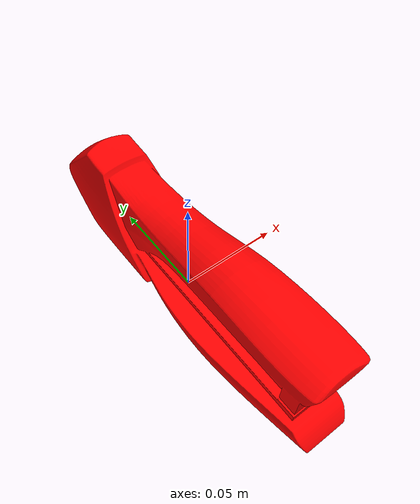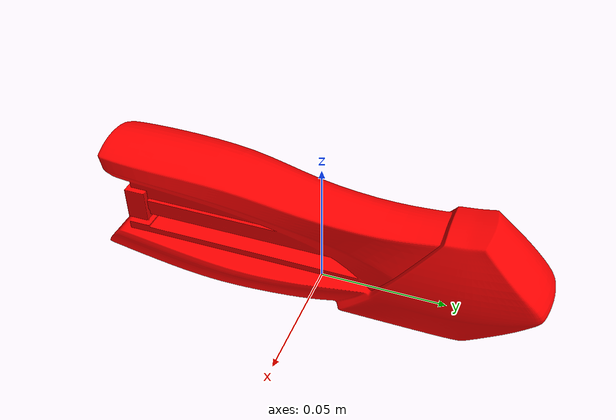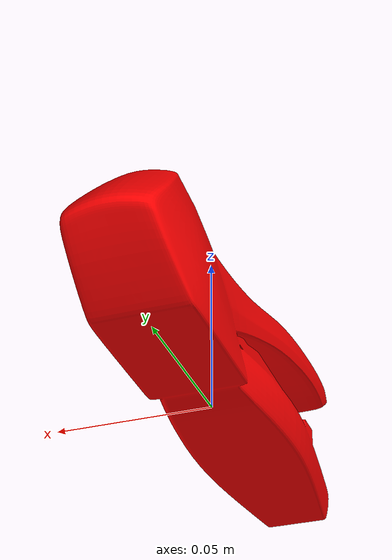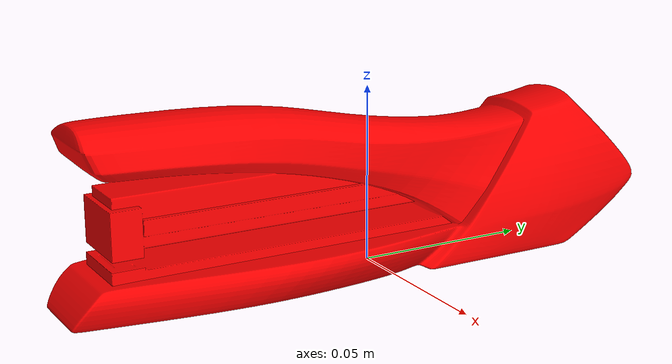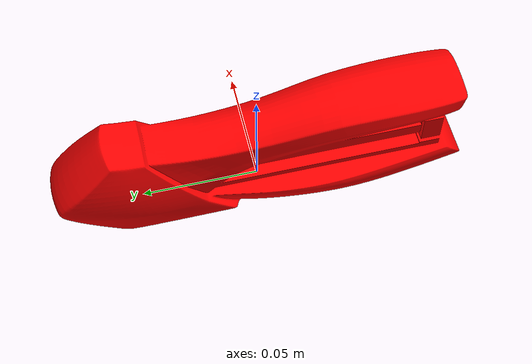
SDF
<?xml version="1.0"?>
<sdf version="1.6">
  <model name="Stapler">

    <!-- Dynamic object -->
    <static>false</static>

    <link name="link">

      <gravity>true</gravity>
      <self_collide>false</self_collide>

      <!-- Inertia for small stapler -->
      <inertial>
        <mass>0.2</mass>
        <inertia>
          <ixx>0.0002</ixx>
          <iyy>0.0006</iyy>
          <izz>0.0007</izz>
          <ixy>0</ixy>
          <ixz>0</ixz>
          <iyz>0</iyz>
        </inertia>
      </inertial>

      <!-- VISUAL -->
      <visual name="visual">
        <geometry>
          <mesh>
            <uri>model://Stapler/meshes/Stapler.dae</uri>
            <scale>1 1 1</scale>
          </mesh>
        </geometry>
        <cast_shadows>true</cast_shadows>
      </visual>

      <!-- COLLISION (Using Mesh Instead of Box) -->
      <collision name="collision">

        <geometry>
          <mesh>
            <uri>model://Stapler/meshes/Stapler.dae</uri>
            <scale>1 1 1</scale>
          </mesh>
        </geometry>

        <surface>
          <contact>
            <ode/>
          </contact>

          <friction>
            <ode>
              <mu>1.2</mu>
              <mu2>1.2</mu2>
            </ode>
          </friction>
        </surface>

      </collision>

    </link>

  </model>
</sdf>
